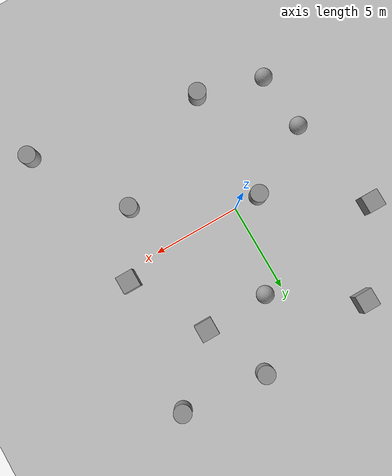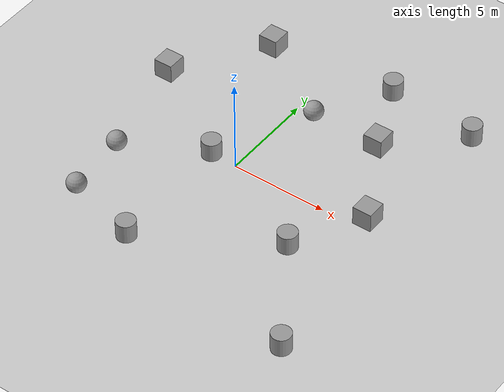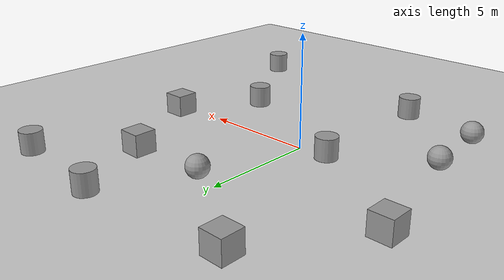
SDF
<sdf version="1.7">
 <world name="default">
  <light name="sun" type="directional">
   <pose>0 0 10 0 -0 0</pose>
   <diffuse>0.8 0.8 0.8 1</diffuse>
   <specular>0.2 0.2 0.2 1</specular>
   <attenuation>
    <range>1000</range>
    <constant>0.9</constant>
    <linear>0.01</linear>
    <quadratic>0.001</quadratic>
   </attenuation>
   <direction>-0.5 0.1 -0.9</direction>
   <spot><inner_angle>0</inner_angle><outer_angle>0</outer_angle><falloff>0</falloff></spot>
  </light>
  <model name="ground_plane">
   <static>1</static>
   <link name="link">
    <collision name="collision">
     <geometry><plane><normal>0 0 1</normal><size>100 100</size></plane></geometry>
     <surface><friction><ode><mu>100</mu><mu2>50</mu2></ode></friction></surface>
    </collision>
    <visual name="visual">
     <cast_shadows>0</cast_shadows>
     <geometry><plane><normal>0 0 1</normal><size>100 100</size></plane></geometry>
     <material>
      <script><uri>file://media/materials/scripts/gazebo.material</uri><name>Gazebo/Grey</name></script>
     </material>
    </visual>
   </link>
  </model>
  <gravity>0 0 -9.8</gravity>
  <magnetic_field>6e-06 2.3e-05 -4.2e-05</magnetic_field>
  <atmosphere type="adiabatic"/>
  <physics type="ode">
   <max_step_size>0.001</max_step_size>
   <real_time_factor>1</real_time_factor>
   <real_time_update_rate>1000</real_time_update_rate>
  </physics>
  <scene><ambient>0.4 0.4 0.4 1</ambient><background>0.7 0.7 0.7 1</background><shadows>1</shadows></scene>
  <audio><device>default</device></audio>
  <spherical_coordinates>
   <surface_model>EARTH_WGS84</surface_model>
   <latitude_deg>0</latitude_deg>
   <longitude_deg>0</longitude_deg>
   <elevation>0</elevation>
   <heading_deg>0</heading_deg>
  </spherical_coordinates>
  <model name="unit_sphere">
   <pose>1.02029 4.88978 0.5 0 -0 0</pose>
   <link name="link">
    <inertial>
     <mass>1</mass>
     <inertia><ixx>0.1</ixx><ixy>0</ixy><ixz>0</ixz><iyy>0.1</iyy><iyz>0</iyz><izz>0.1</izz></inertia>
    </inertial>
    <collision name="collision"><geometry><sphere><radius>0.5</radius></sphere></geometry></collision>
    <visual name="visual">
     <geometry><sphere><radius>0.5</radius></sphere></geometry>
     <material>
      <script><name>Gazebo/Grey</name><uri>file://media/materials/scripts/gazebo.material</uri></script>
     </material>
    </visual>
   </link>
  </model>
  <model name="unit_box">
   <pose>4.69219 4.9429 0.5 0 -0 5e-06</pose>
   <link name="link">
    <inertial>
     <mass>1</mass>
     <inertia>
      <ixx>0.166667</ixx>
      <ixy>0</ixy>
      <ixz>0</ixz>
      <iyy>0.166667</iyy>
      <iyz>0</iyz>
      <izz>0.166667</izz>
     </inertia>
    </inertial>
    <collision name="collision"><geometry><box><size>1 1 1</size></box></geometry></collision>
    <visual name="visual">
     <geometry><box><size>1 1 1</size></box></geometry>
     <material>
      <script><name>Gazebo/Grey</name><uri>file://media/materials/scripts/gazebo.material</uri></script>
     </material>
    </visual>
   </link>
  </model>
  <model name="unit_cylinder">
   <pose>5.07927 -2.89111 0.499992 -3e-06 2e-06 0</pose>
   <link name="link">
    <inertial>
     <mass>1</mass>
     <inertia><ixx>0.145833</ixx><ixy>0</ixy><ixz>0</ixz><iyy>0.145833</iyy><iyz>0</iyz><izz>0.125</izz></inertia>
    </inertial>
    <collision name="collision">
     <geometry><cylinder><radius>0.5</radius><length>1</length></cylinder></geometry>
    </collision>
    <visual name="visual">
     <geometry><cylinder><radius>0.5</radius><length>1</length></cylinder></geometry>
     <material>
      <script><name>Gazebo/Grey</name><uri>file://media/materials/scripts/gazebo.material</uri></script>
     </material>
    </visual>
   </link>
  </model>
  <model name="unit_cylinder_0">
   <pose>-1.41384 0.008949 0.499992 -3e-06 3e-06 0</pose>
   <link name="link">
    <inertial>
     <mass>1</mass>
     <inertia><ixx>0.145833</ixx><ixy>0</ixy><ixz>0</ixz><iyy>0.145833</iyy><iyz>0</iyz><izz>0.125</izz></inertia>
    </inertial>
    <collision name="collision">
     <geometry><cylinder><radius>0.5</radius><length>1</length></cylinder></geometry>
    </collision>
    <visual name="visual">
     <geometry><cylinder><radius>0.5</radius><length>1</length></cylinder></geometry>
     <material>
      <script><name>Gazebo/Grey</name><uri>file://media/materials/scripts/gazebo.material</uri></script>
     </material>
    </visual>
   </link>
  </model>
  <model name="unit_box_0">
   <pose>-3.49706 7.85416 0.5 0 -0 5e-06</pose>
   <link name="link">
    <inertial>
     <mass>1</mass>
     <inertia>
      <ixx>0.166667</ixx>
      <ixy>0</ixy>
      <ixz>0</ixz>
      <iyy>0.166667</iyy>
      <iyz>0</iyz>
      <izz>0.166667</izz>
     </inertia>
    </inertial>
    <collision name="collision"><geometry><box><size>1 1 1</size></box></geometry></collision>
    <visual name="visual">
     <geometry><box><size>1 1 1</size></box></geometry>
     <material>
      <script><name>Gazebo/Grey</name><uri>file://media/materials/scripts/gazebo.material</uri></script>
     </material>
    </visual>
   </link>
  </model>
  <model name="unit_cylinder_1">
   <pose>3.13298 8.52545 0.499992 -3e-06 3e-06 0</pose>
   <link name="link">
    <inertial>
     <mass>1</mass>
     <inertia><ixx>0.145833</ixx><ixy>0</ixy><ixz>0</ixz><iyy>0.145833</iyy><iyz>0</iyz><izz>0.125</izz></inertia>
    </inertial>
    <collision name="collision">
     <geometry><cylinder><radius>0.5</radius><length>1</length></cylinder></geometry>
    </collision>
    <visual name="visual">
     <geometry><cylinder><radius>0.5</radius><length>1</length></cylinder></geometry>
     <material>
      <script><name>Gazebo/Grey</name><uri>file://media/materials/scripts/gazebo.material</uri></script>
     </material>
    </visual>
   </link>
  </model>
  <model name="unit_box_1">
   <pose>7.06843 0.630264 0.5 0 -0 5e-06</pose>
   <link name="link">
    <inertial>
     <mass>1</mass>
     <inertia>
      <ixx>0.166667</ixx>
      <ixy>0</ixy>
      <ixz>0</ixz>
      <iyy>0.166667</iyy>
      <iyz>0</iyz>
      <izz>0.166667</izz>
     </inertia>
    </inertial>
    <collision name="collision"><geometry><box><size>1 1 1</size></box></geometry></collision>
    <visual name="visual">
     <geometry><box><size>1 1 1</size></box></geometry>
     <material>
      <script><name>Gazebo/Grey</name><uri>file://media/materials/scripts/gazebo.material</uri></script>
     </material>
    </visual>
   </link>
  </model>
  <model name="unit_sphere_0">
   <pose>-5.02558 -5.60449 0.5 0 -0 0</pose>
   <link name="link">
    <inertial>
     <mass>1</mass>
     <inertia><ixx>0.1</ixx><ixy>0</ixy><ixz>0</ixz><iyy>0.1</iyy><iyz>0</iyz><izz>0.1</izz></inertia>
    </inertial>
    <collision name="collision"><geometry><sphere><radius>0.5</radius></sphere></geometry></collision>
    <visual name="visual">
     <geometry><sphere><radius>0.5</radius></sphere></geometry>
     <material>
      <script><name>Gazebo/Grey</name><uri>file://media/materials/scripts/gazebo.material</uri></script>
     </material>
    </visual>
   </link>
  </model>
  <model name="unit_cylinder_2">
   <pose>-1.3167 -6.59615 0.499998 3e-06 4e-06 -0</pose>
   <link name="link">
    <inertial>
     <mass>1</mass>
     <inertia><ixx>0.145833</ixx><ixy>0</ixy><ixz>0</ixz><iyy>0.145833</iyy><iyz>0</iyz><izz>0.125</izz></inertia>
    </inertial>
    <collision name="collision">
     <geometry><cylinder><radius>0.5</radius><length>1</length></cylinder></geometry>
    </collision>
    <visual name="visual">
     <geometry><cylinder><radius>0.5</radius><length>1</length></cylinder></geometry>
     <material>
      <script><name>Gazebo/Grey</name><uri>file://media/materials/scripts/gazebo.material</uri></script>
     </material>
    </visual>
   </link>
  </model>
  <model name="unit_box_2">
   <pose>-6.54813 3.42267 0.5 0 -0 5e-06</pose>
   <link name="link">
    <inertial>
     <mass>1</mass>
     <inertia>
      <ixx>0.166667</ixx>
      <ixy>0</ixy>
      <ixz>0</ixz>
      <iyy>0.166667</iyy>
      <iyz>0</iyz>
      <izz>0.166667</izz>
     </inertia>
    </inertial>
    <collision name="collision"><geometry><box><size>1 1 1</size></box></geometry></collision>
    <visual name="visual">
     <geometry><box><size>1 1 1</size></box></geometry>
     <material>
      <script><name>Gazebo/Grey</name><uri>file://media/materials/scripts/gazebo.material</uri></script>
     </material>
    </visual>
   </link>
  </model>
  <model name="unit_sphere_1">
   <pose>-5.29893 -2.25564 0.5 0 -0 0</pose>
   <link name="link">
    <inertial>
     <mass>1</mass>
     <inertia><ixx>0.1</ixx><ixy>0</ixy><ixz>0</ixz><iyy>0.1</iyy><iyz>0</iyz><izz>0.1</izz></inertia>
    </inertial>
    <collision name="collision"><geometry><sphere><radius>0.5</radius></sphere></geometry></collision>
    <visual name="visual">
     <geometry><sphere><radius>0.5</radius></sphere></geometry>
     <material>
      <script><name>Gazebo/Grey</name><uri>file://media/materials/scripts/gazebo.material</uri></script>
     </material>
    </visual>
   </link>
  </model>
  <model name="unit_cylinder_3">
   <pose>7.9402 8.06542 0.499998 3e-06 4e-06 -0</pose>
   <link name="link">
    <inertial>
     <mass>1</mass>
     <inertia><ixx>0.145833</ixx><ixy>0</ixy><ixz>0</ixz><iyy>0.145833</iyy><iyz>0</iyz><izz>0.125</izz></inertia>
    </inertial>
    <collision name="collision">
     <geometry><cylinder><radius>0.5</radius><length>1</length></cylinder></geometry>
    </collision>
    <visual name="visual">
     <geometry><cylinder><radius>0.5</radius><length>1</length></cylinder></geometry>
     <material>
      <script><name>Gazebo/Grey</name><uri>file://media/materials/scripts/gazebo.material</uri></script>
     </material>
    </visual>
   </link>
  </model>
  <model name="unit_cylinder_4">
   <pose>8.49523 -8.10727 0.499997 3e-06 4e-06 -0</pose>
   <link name="link">
    <inertial>
     <mass>1</mass>
     <inertia><ixx>0.145833</ixx><ixy>0</ixy><ixz>0</ixz><iyy>0.145833</iyy><iyz>0</iyz><izz>0.125</izz></inertia>
    </inertial>
    <collision name="collision">
     <geometry><cylinder><radius>0.5</radius><length>1</length></cylinder></geometry>
    </collision>
    <visual name="visual">
     <geometry><cylinder><radius>0.5</radius><length>1</length></cylinder></geometry>
     <material>
      <script><name>Gazebo/Grey</name><uri>file://media/materials/scripts/gazebo.material</uri></script>
     </material>
    </visual>
   </link>
  </model>
 </world>
</sdf>
